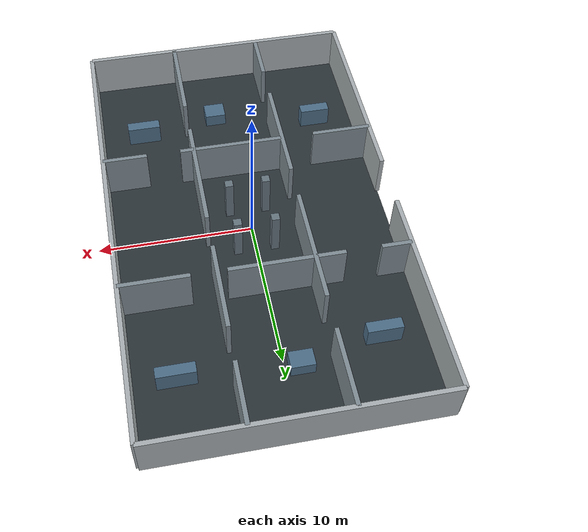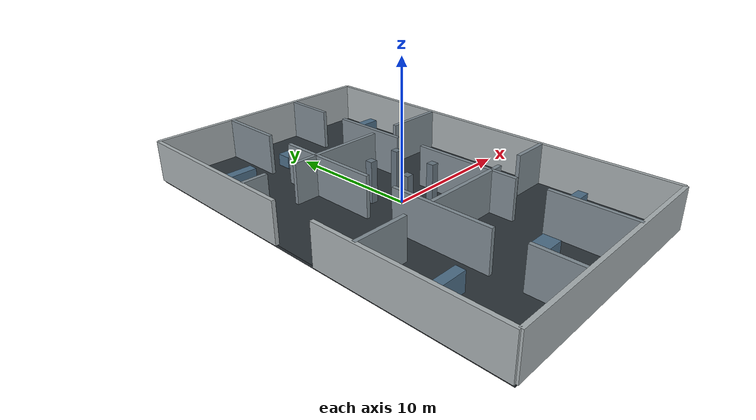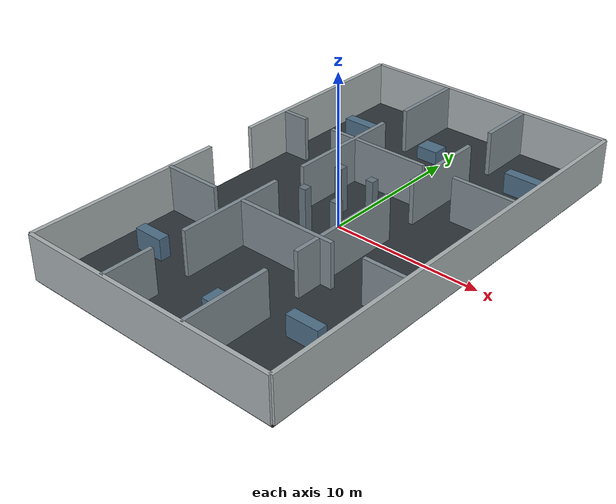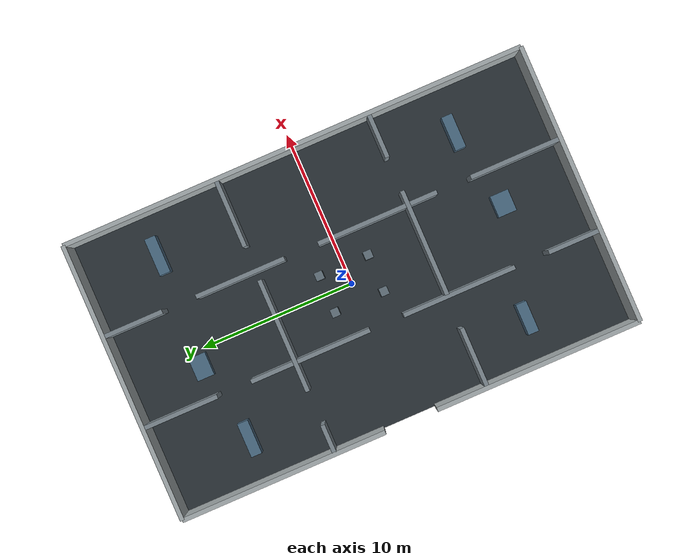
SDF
<?xml version='1.0'?>
<sdf version='1.6'>
<world name='s1_structured_office'>
  <gravity>0 0 -9.81</gravity>
  <scene><ambient>0.62 0.64 0.66 1</ambient><background>0.72 0.75 0.78 1</background><shadows>true</shadows></scene>
  <include><uri>model://sun</uri></include>
    <model name='floor'>
    <static>true</static>
    <pose>0.0000 0.0000 -0.1000 0.000000 0.000000 0.000000</pose>
    <link name='link'>
      <collision name='collision'><geometry><box><size>18.0000 30.0000 0.2000</size></box></geometry></collision>
      <visual name='visual'><geometry><box><size>18.0000 30.0000 0.2000</size></box></geometry><material><ambient>0.170 0.200 0.220 1</ambient><diffuse>0.170 0.200 0.220 1</diffuse></material></visual>
    </link>
  </model>
  <model name='envelope_north'>
    <static>true</static>
    <pose>0.0000 15.0000 1.5000 0.000000 0.000000 0.000000</pose>
    <link name='link'>
      <collision name='collision'><geometry><box><size>18.0000 0.2800 3.0000</size></box></geometry></collision>
      <visual name='visual'><geometry><box><size>18.0000 0.2800 3.0000</size></box></geometry><material><ambient>0.660 0.690 0.700 1</ambient><diffuse>0.660 0.690 0.700 1</diffuse></material></visual>
    </link>
  </model>
  <model name='envelope_south'>
    <static>true</static>
    <pose>0.0000 -15.0000 1.5000 0.000000 0.000000 0.000000</pose>
    <link name='link'>
      <collision name='collision'><geometry><box><size>18.0000 0.2800 3.0000</size></box></geometry></collision>
      <visual name='visual'><geometry><box><size>18.0000 0.2800 3.0000</size></box></geometry><material><ambient>0.660 0.690 0.700 1</ambient><diffuse>0.660 0.690 0.700 1</diffuse></material></visual>
    </link>
  </model>
  <model name='envelope_east'>
    <static>true</static>
    <pose>9.0000 0.0000 1.5000 0.000000 0.000000 1.570796</pose>
    <link name='link'>
      <collision name='collision'><geometry><box><size>30.0000 0.2800 3.0000</size></box></geometry></collision>
      <visual name='visual'><geometry><box><size>30.0000 0.2800 3.0000</size></box></geometry><material><ambient>0.660 0.690 0.700 1</ambient><diffuse>0.660 0.690 0.700 1</diffuse></material></visual>
    </link>
  </model>
  <model name='envelope_west_00'>
    <static>true</static>
    <pose>-9.0000 -8.3500 1.5000 0.000000 0.000000 1.570796</pose>
    <link name='link'>
      <collision name='collision'><geometry><box><size>13.3000 0.2800 3.0000</size></box></geometry></collision>
      <visual name='visual'><geometry><box><size>13.3000 0.2800 3.0000</size></box></geometry><material><ambient>0.660 0.690 0.700 1</ambient><diffuse>0.660 0.690 0.700 1</diffuse></material></visual>
    </link>
  </model>
  <model name='envelope_west_01'>
    <static>true</static>
    <pose>-9.0000 8.3500 1.5000 0.000000 0.000000 1.570796</pose>
    <link name='link'>
      <collision name='collision'><geometry><box><size>13.3000 0.2800 3.0000</size></box></geometry></collision>
      <visual name='visual'><geometry><box><size>13.3000 0.2800 3.0000</size></box></geometry><material><ambient>0.660 0.690 0.700 1</ambient><diffuse>0.660 0.690 0.700 1</diffuse></material></visual>
    </link>
  </model>
  <model name='s1_north_divider_00'>
    <static>true</static>
    <pose>-8.0500 5.0000 1.5000 0.000000 0.000000 0.000000</pose>
    <link name='link'>
      <collision name='collision'><geometry><box><size>1.9000 0.2800 3.0000</size></box></geometry></collision>
      <visual name='visual'><geometry><box><size>1.9000 0.2800 3.0000</size></box></geometry><material><ambient>0.500 0.550 0.580 1</ambient><diffuse>0.500 0.550 0.580 1</diffuse></material></visual>
    </link>
  </model>
  <model name='s1_north_divider_01'>
    <static>true</static>
    <pose>-1.2500 5.0000 1.5000 0.000000 0.000000 0.000000</pose>
    <link name='link'>
      <collision name='collision'><geometry><box><size>7.3000 0.2800 3.0000</size></box></geometry></collision>
      <visual name='visual'><geometry><box><size>7.3000 0.2800 3.0000</size></box></geometry><material><ambient>0.500 0.550 0.580 1</ambient><diffuse>0.500 0.550 0.580 1</diffuse></material></visual>
    </link>
  </model>
  <model name='s1_north_divider_02'>
    <static>true</static>
    <pose>6.8000 5.0000 1.5000 0.000000 0.000000 0.000000</pose>
    <link name='link'>
      <collision name='collision'><geometry><box><size>4.4000 0.2800 3.0000</size></box></geometry></collision>
      <visual name='visual'><geometry><box><size>4.4000 0.2800 3.0000</size></box></geometry><material><ambient>0.500 0.550 0.580 1</ambient><diffuse>0.500 0.550 0.580 1</diffuse></material></visual>
    </link>
  </model>
  <model name='s1_south_divider_00'>
    <static>true</static>
    <pose>-7.0500 -5.0000 1.5000 0.000000 0.000000 0.000000</pose>
    <link name='link'>
      <collision name='collision'><geometry><box><size>3.9000 0.2800 3.0000</size></box></geometry></collision>
      <visual name='visual'><geometry><box><size>3.9000 0.2800 3.0000</size></box></geometry><material><ambient>0.500 0.550 0.580 1</ambient><diffuse>0.500 0.550 0.580 1</diffuse></material></visual>
    </link>
  </model>
  <model name='s1_south_divider_01'>
    <static>true</static>
    <pose>0.5000 -5.0000 1.5000 0.000000 0.000000 0.000000</pose>
    <link name='link'>
      <collision name='collision'><geometry><box><size>6.8000 0.2800 3.0000</size></box></geometry></collision>
      <visual name='visual'><geometry><box><size>6.8000 0.2800 3.0000</size></box></geometry><material><ambient>0.500 0.550 0.580 1</ambient><diffuse>0.500 0.550 0.580 1</diffuse></material></visual>
    </link>
  </model>
  <model name='s1_south_divider_02'>
    <static>true</static>
    <pose>7.5500 -5.0000 1.5000 0.000000 0.000000 0.000000</pose>
    <link name='link'>
      <collision name='collision'><geometry><box><size>2.9000 0.2800 3.0000</size></box></geometry></collision>
      <visual name='visual'><geometry><box><size>2.9000 0.2800 3.0000</size></box></geometry><material><ambient>0.500 0.550 0.580 1</ambient><diffuse>0.500 0.550 0.580 1</diffuse></material></visual>
    </link>
  </model>
  <model name='s1_west_divider_00'>
    <static>true</static>
    <pose>-3.0000 -13.3000 1.5000 0.000000 0.000000 1.570796</pose>
    <link name='link'>
      <collision name='collision'><geometry><box><size>3.4000 0.2800 3.0000</size></box></geometry></collision>
      <visual name='visual'><geometry><box><size>3.4000 0.2800 3.0000</size></box></geometry><material><ambient>0.500 0.550 0.580 1</ambient><diffuse>0.500 0.550 0.580 1</diffuse></material></visual>
    </link>
  </model>
  <model name='s1_west_divider_01'>
    <static>true</static>
    <pose>-3.0000 -5.7500 1.5000 0.000000 0.000000 1.570796</pose>
    <link name='link'>
      <collision name='collision'><geometry><box><size>7.3000 0.2800 3.0000</size></box></geometry></collision>
      <visual name='visual'><geometry><box><size>7.3000 0.2800 3.0000</size></box></geometry><material><ambient>0.500 0.550 0.580 1</ambient><diffuse>0.500 0.550 0.580 1</diffuse></material></visual>
    </link>
  </model>
  <model name='s1_west_divider_02'>
    <static>true</static>
    <pose>-3.0000 4.0000 1.5000 0.000000 0.000000 1.570796</pose>
    <link name='link'>
      <collision name='collision'><geometry><box><size>7.8000 0.2800 3.0000</size></box></geometry></collision>
      <visual name='visual'><geometry><box><size>7.8000 0.2800 3.0000</size></box></geometry><material><ambient>0.500 0.550 0.580 1</ambient><diffuse>0.500 0.550 0.580 1</diffuse></material></visual>
    </link>
  </model>
  <model name='s1_west_divider_03'>
    <static>true</static>
    <pose>-3.0000 12.5500 1.5000 0.000000 0.000000 1.570796</pose>
    <link name='link'>
      <collision name='collision'><geometry><box><size>4.9000 0.2800 3.0000</size></box></geometry></collision>
      <visual name='visual'><geometry><box><size>4.9000 0.2800 3.0000</size></box></geometry><material><ambient>0.500 0.550 0.580 1</ambient><diffuse>0.500 0.550 0.580 1</diffuse></material></visual>
    </link>
  </model>
  <model name='s1_east_divider_00'>
    <static>true</static>
    <pose>3.0000 -12.0500 1.5000 0.000000 0.000000 1.570796</pose>
    <link name='link'>
      <collision name='collision'><geometry><box><size>5.9000 0.2800 3.0000</size></box></geometry></collision>
      <visual name='visual'><geometry><box><size>5.9000 0.2800 3.0000</size></box></geometry><material><ambient>0.500 0.550 0.580 1</ambient><diffuse>0.500 0.550 0.580 1</diffuse></material></visual>
    </link>
  </model>
  <model name='s1_east_divider_01'>
    <static>true</static>
    <pose>3.0000 -3.0000 1.5000 0.000000 0.000000 1.570796</pose>
    <link name='link'>
      <collision name='collision'><geometry><box><size>7.8000 0.2800 3.0000</size></box></geometry></collision>
      <visual name='visual'><geometry><box><size>7.8000 0.2800 3.0000</size></box></geometry><material><ambient>0.500 0.550 0.580 1</ambient><diffuse>0.500 0.550 0.580 1</diffuse></material></visual>
    </link>
  </model>
  <model name='s1_east_divider_02'>
    <static>true</static>
    <pose>3.0000 6.0000 1.5000 0.000000 0.000000 1.570796</pose>
    <link name='link'>
      <collision name='collision'><geometry><box><size>5.8000 0.2800 3.0000</size></box></geometry></collision>
      <visual name='visual'><geometry><box><size>5.8000 0.2800 3.0000</size></box></geometry><material><ambient>0.500 0.550 0.580 1</ambient><diffuse>0.500 0.550 0.580 1</diffuse></material></visual>
    </link>
  </model>
  <model name='s1_east_divider_03'>
    <static>true</static>
    <pose>3.0000 13.0500 1.5000 0.000000 0.000000 1.570796</pose>
    <link name='link'>
      <collision name='collision'><geometry><box><size>3.9000 0.2800 3.0000</size></box></geometry></collision>
      <visual name='visual'><geometry><box><size>3.9000 0.2800 3.0000</size></box></geometry><material><ambient>0.500 0.550 0.580 1</ambient><diffuse>0.500 0.550 0.580 1</diffuse></material></visual>
    </link>
  </model>
  <model name='s1_equipment_00'>
    <static>true</static>
    <pose>-6.2000 9.5000 0.7000 0.000000 0.000000 0.000000</pose>
    <link name='link'>
      <collision name='collision'><geometry><box><size>2.2000 0.7000 1.4000</size></box></geometry></collision>
      <visual name='visual'><geometry><box><size>2.2000 0.7000 1.4000</size></box></geometry><material><ambient>0.300 0.430 0.530 1</ambient><diffuse>0.300 0.430 0.530 1</diffuse></material></visual>
    </link>
  </model>
  <model name='s1_equipment_01'>
    <static>true</static>
    <pose>-6.2000 -9.0000 0.7000 0.000000 0.000000 0.000000</pose>
    <link name='link'>
      <collision name='collision'><geometry><box><size>2.0000 0.7000 1.4000</size></box></geometry></collision>
      <visual name='visual'><geometry><box><size>2.0000 0.7000 1.4000</size></box></geometry><material><ambient>0.300 0.430 0.530 1</ambient><diffuse>0.300 0.430 0.530 1</diffuse></material></visual>
    </link>
  </model>
  <model name='s1_equipment_02'>
    <static>true</static>
    <pose>6.3000 10.2000 0.7000 0.000000 0.000000 0.000000</pose>
    <link name='link'>
      <collision name='collision'><geometry><box><size>2.4000 0.7000 1.4000</size></box></geometry></collision>
      <visual name='visual'><geometry><box><size>2.4000 0.7000 1.4000</size></box></geometry><material><ambient>0.300 0.430 0.530 1</ambient><diffuse>0.300 0.430 0.530 1</diffuse></material></visual>
    </link>
  </model>
  <model name='s1_equipment_03'>
    <static>true</static>
    <pose>6.0000 -9.4000 0.7000 0.000000 0.000000 0.000000</pose>
    <link name='link'>
      <collision name='collision'><geometry><box><size>2.2000 0.7000 1.4000</size></box></geometry></collision>
      <visual name='visual'><geometry><box><size>2.2000 0.7000 1.4000</size></box></geometry><material><ambient>0.300 0.430 0.530 1</ambient><diffuse>0.300 0.430 0.530 1</diffuse></material></visual>
    </link>
  </model>
  <model name='s1_equipment_04'>
    <static>true</static>
    <pose>-1.0000 10.5000 0.4500 0.000000 0.000000 0.000000</pose>
    <link name='link'>
      <collision name='collision'><geometry><box><size>1.5000 1.1000 0.9000</size></box></geometry></collision>
      <visual name='visual'><geometry><box><size>1.5000 1.1000 0.9000</size></box></geometry><material><ambient>0.300 0.430 0.530 1</ambient><diffuse>0.300 0.430 0.530 1</diffuse></material></visual>
    </link>
  </model>
  <model name='s1_equipment_05'>
    <static>true</static>
    <pose>0.8000 -10.5000 0.4500 0.000000 0.000000 0.000000</pose>
    <link name='link'>
      <collision name='collision'><geometry><box><size>1.4000 1.2000 0.9000</size></box></geometry></collision>
      <visual name='visual'><geometry><box><size>1.4000 1.2000 0.9000</size></box></geometry><material><ambient>0.300 0.430 0.530 1</ambient><diffuse>0.300 0.430 0.530 1</diffuse></material></visual>
    </link>
  </model>
  <model name='s1_column_00'>
    <static>true</static>
    <pose>-1.2000 1.6000 1.5000 0.000000 0.000000 0.000000</pose>
    <link name='link'>
      <collision name='collision'><geometry><box><size>0.5200 0.5200 3.0000</size></box></geometry></collision>
      <visual name='visual'><geometry><box><size>0.5200 0.5200 3.0000</size></box></geometry><material><ambient>0.400 0.460 0.500 1</ambient><diffuse>0.400 0.460 0.500 1</diffuse></material></visual>
    </link>
  </model>
  <model name='s1_column_01'>
    <static>true</static>
    <pose>1.2000 1.6000 1.5000 0.000000 0.000000 0.000000</pose>
    <link name='link'>
      <collision name='collision'><geometry><box><size>0.5200 0.5200 3.0000</size></box></geometry></collision>
      <visual name='visual'><geometry><box><size>0.5200 0.5200 3.0000</size></box></geometry><material><ambient>0.400 0.460 0.500 1</ambient><diffuse>0.400 0.460 0.500 1</diffuse></material></visual>
    </link>
  </model>
  <model name='s1_column_02'>
    <static>true</static>
    <pose>-1.2000 -1.6000 1.5000 0.000000 0.000000 0.000000</pose>
    <link name='link'>
      <collision name='collision'><geometry><box><size>0.5200 0.5200 3.0000</size></box></geometry></collision>
      <visual name='visual'><geometry><box><size>0.5200 0.5200 3.0000</size></box></geometry><material><ambient>0.400 0.460 0.500 1</ambient><diffuse>0.400 0.460 0.500 1</diffuse></material></visual>
    </link>
  </model>
  <model name='s1_column_03'>
    <static>true</static>
    <pose>1.2000 -1.6000 1.5000 0.000000 0.000000 0.000000</pose>
    <link name='link'>
      <collision name='collision'><geometry><box><size>0.5200 0.5200 3.0000</size></box></geometry></collision>
      <visual name='visual'><geometry><box><size>0.5200 0.5200 3.0000</size></box></geometry><material><ambient>0.400 0.460 0.500 1</ambient><diffuse>0.400 0.460 0.500 1</diffuse></material></visual>
    </link>
  </model>
</world>
</sdf>
